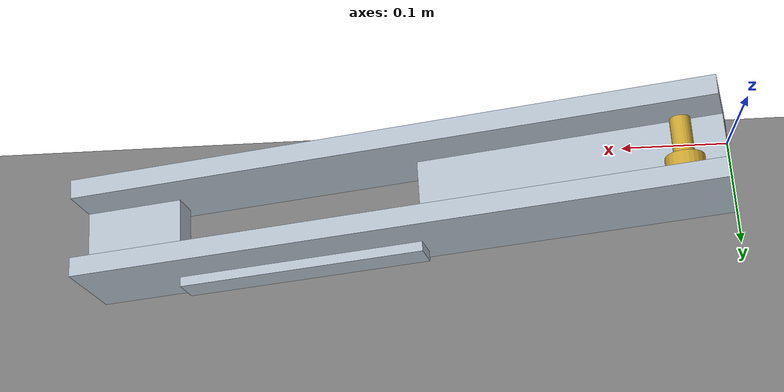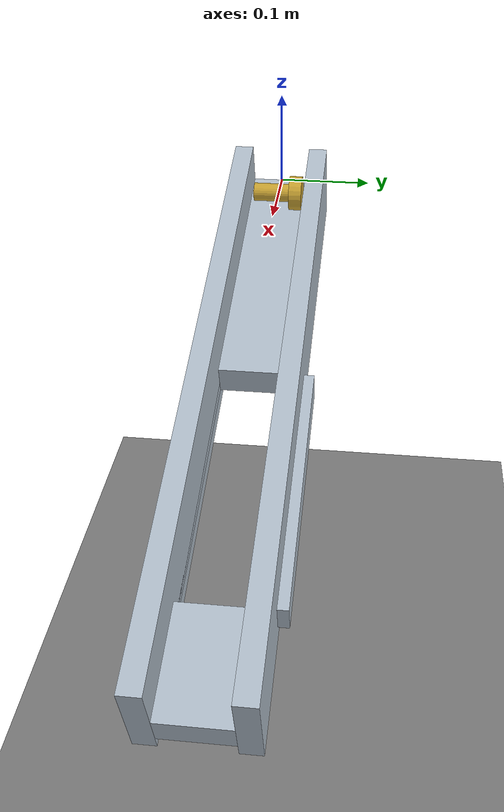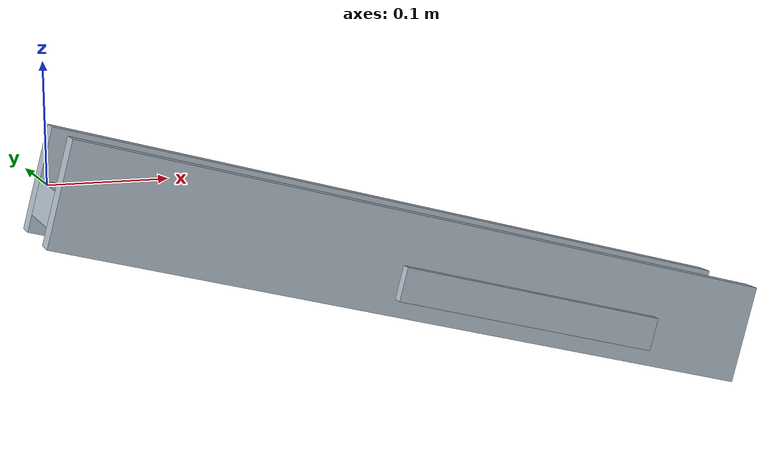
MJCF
<mujoco model="roll"><option timestep="0.0004" gravity="0 0 -9.81" integrator="implicitfast" cone="elliptic" impratio="10"><flag multiccd="enable"/></option>
<visual><global offwidth="1280" offheight="720"/></visual>
<worldbody><light pos="0.5 -1 2" dir="-0.3 0.5 -1"/><camera name="iso" pos="0.3139 -1.1000 0.5000" xyaxes="1.0000 -0.0000 0.0000 0.0000 0.5281 0.8492"/>
<geom name="lead" type="box" pos="0.14101 0.00000 -0.05331" size="0.15000 0.03200 0.01500" xyaxes="0.965926 0 -0.258819 0 1 0" rgba="0.7 0.75 0.8 1" friction="0.3 0.005 0.0001"/>
<geom name="railL0" type="box" pos="0.40664 -0.04700 -0.12449" size="0.12500 -0.01500 0.01500" xyaxes="0.965926 0 -0.258819 0 1 0" rgba="0.7 0.75 0.8 1" friction="0.3 0.005 0.0001"/>
<geom name="railR0" type="box" pos="0.40664 0.04700 -0.12449" size="0.12500 -0.01500 0.01500" xyaxes="0.965926 0 -0.258819 0 1 0" rgba="0.7 0.75 0.8 1" friction="0.3 0.005 0.0001"/>
<geom name="end" type="box" pos="0.57567 0.00000 -0.16978" size="0.05000 0.03200 0.01500" xyaxes="0.965926 0 -0.258819 0 1 0" rgba="0.7 0.75 0.8 1" friction="0.3 0.005 0.0001"/>
<geom name="wall-1" type="box" pos="0.31393 -0.04200 -0.08412" size="0.32500 0.01000 0.04500" xyaxes="0.965926 0 -0.258819 0 1 0" rgba="0.7 0.75 0.8 1" friction="0.3 0.005 0.0001"/>
<geom name="wall1" type="box" pos="0.31393 0.04200 -0.08412" size="0.32500 0.01000 0.04500" xyaxes="0.965926 0 -0.258819 0 1 0" rgba="0.7 0.75 0.8 1" friction="0.3 0.005 0.0001"/>
<geom name="ground" type="plane" pos="0 0 -0.6" size="3 3 0.1"/>
<body name="s0" pos="0.04200 -0.02700 0.00220" quat="0.707107 -0.707107 0.000000 0.000000"><freejoint/>
<geom name="s0_sh" type="cylinder" size="0.01000 0.02000" pos="0 0 0.02000" density="7850" rgba="0.8 0.65 0.2 1" friction="0.3 0.005 0.0001"/>
<geom name="s0_hd" type="cylinder" size="0.01900 0.00700" pos="0 0 0.04700" density="7850" rgba="0.8 0.65 0.2 1" friction="0.3 0.005 0.0001"/>
</body>
</worldbody></mujoco>
